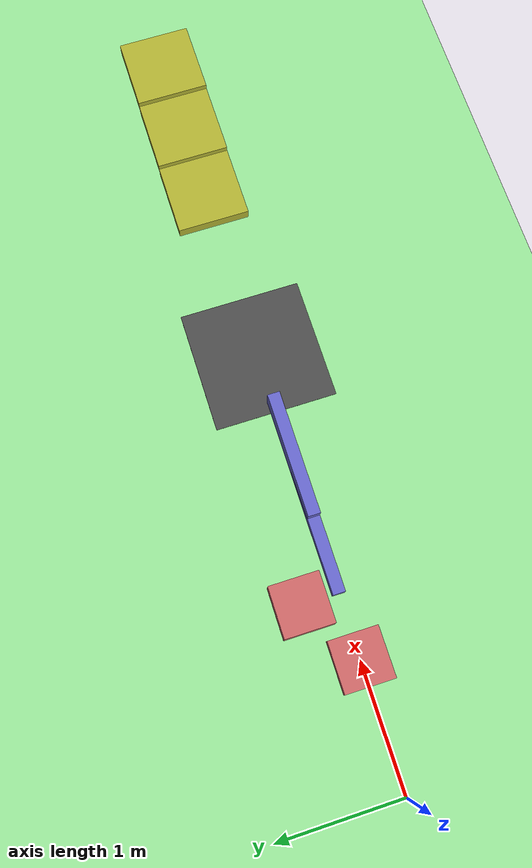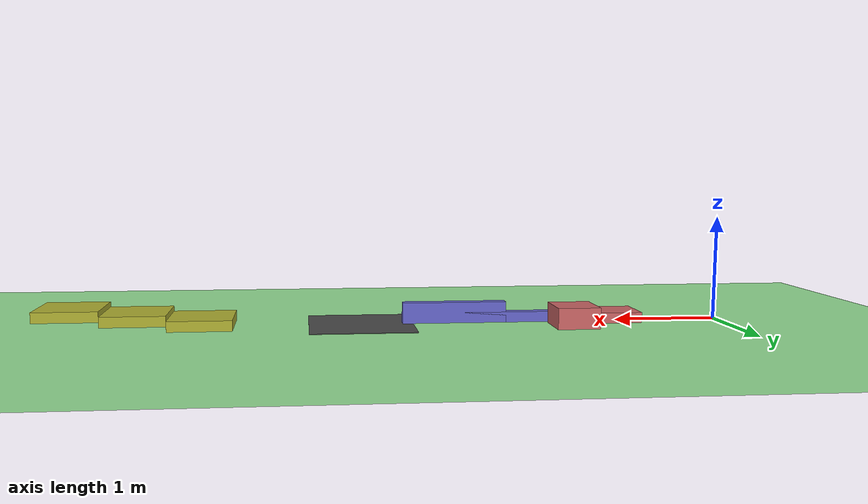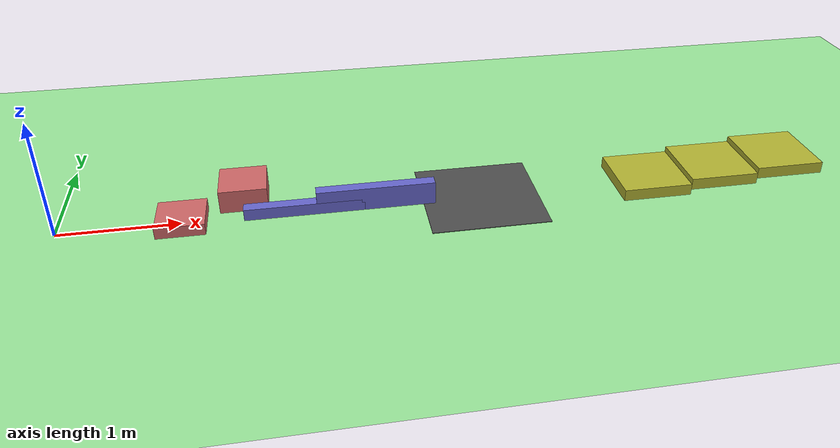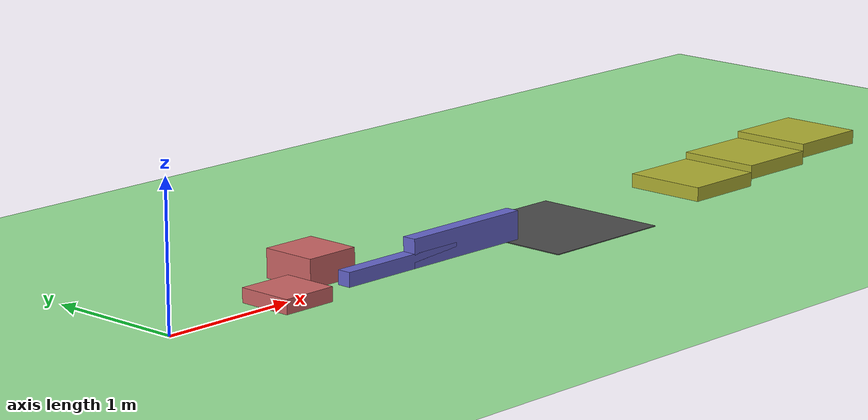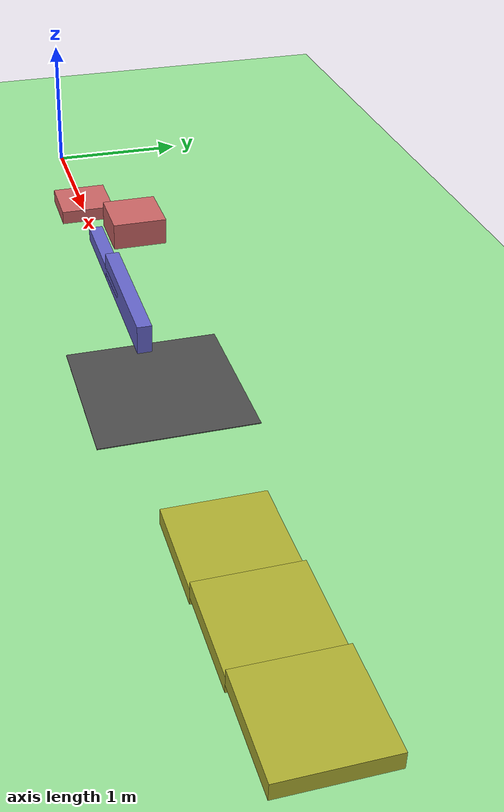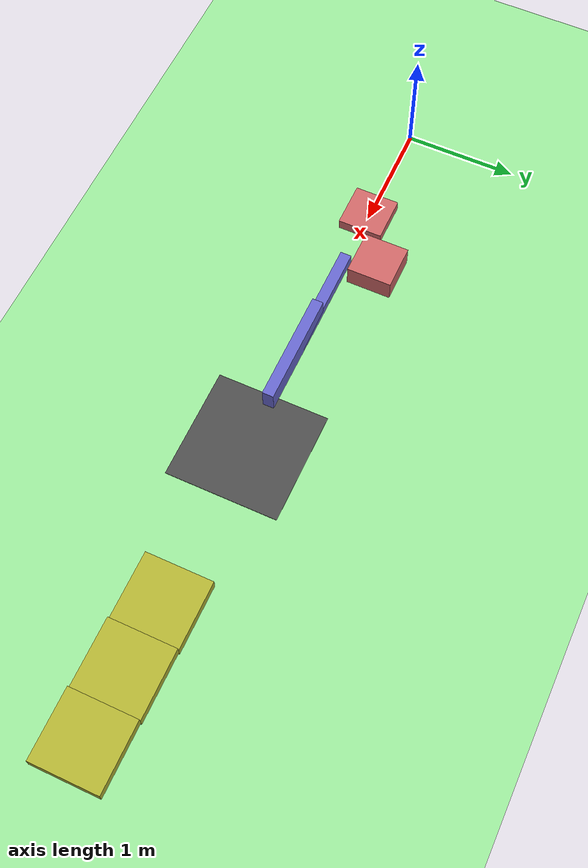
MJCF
<mujoco model="terrain">
    <worldbody>

        <!-- Flat ground -->
        <geom name="ground" type="plane" size="10 10 0.1" rgba="0.6 0.9 0.6 1" />

        <!-- Bumps -->
        <geom type="box" pos="1 0 0.05" size="0.2 0.2 0.05" rgba="0.8 0.4 0.4 1" />
        <geom type="box" pos="1.5 0.3 0.1" size="0.2 0.2 0.1" rgba="0.8 0.4 0.4 1" />

        <!-- Ridges -->
        <geom type="box" pos="2 0 0.05" size="0.5 0.05 0.05" rgba="0.4 0.4 0.8 1" />
        <geom type="box" pos="2.6 0 0.1" size="0.5 0.05 0.1" rgba="0.4 0.4 0.8 1" />

        <!-- Trough -->
        <geom type="box" pos="3.5 0 -0.1" size="0.5 0.5 0.1" rgba="0.3 0.3 0.3 1" contype="1" conaffinity="1" />

        <!-- Stairs -->
        <geom type="box" pos="5 0 0.05" size="0.3 0.3 0.05" rgba="0.7 0.7 0.2 1" />
        <geom type="box" pos="5.6 0 0.10" size="0.3 0.3 0.05" rgba="0.7 0.7 0.2 1" />
        <geom type="box" pos="6.2 0 0.15" size="0.3 0.3 0.05" rgba="0.7 0.7 0.2 1" />

    </worldbody>
</mujoco>
